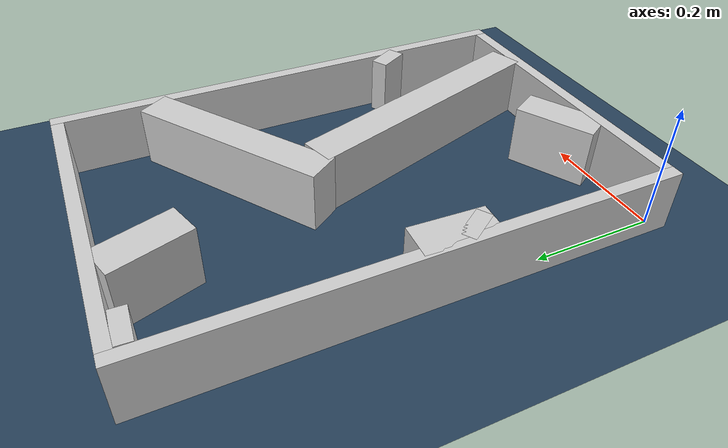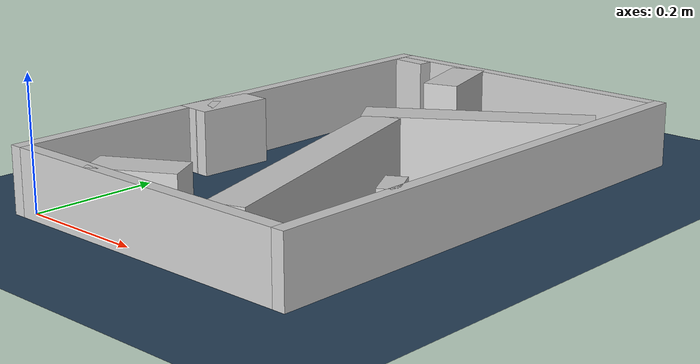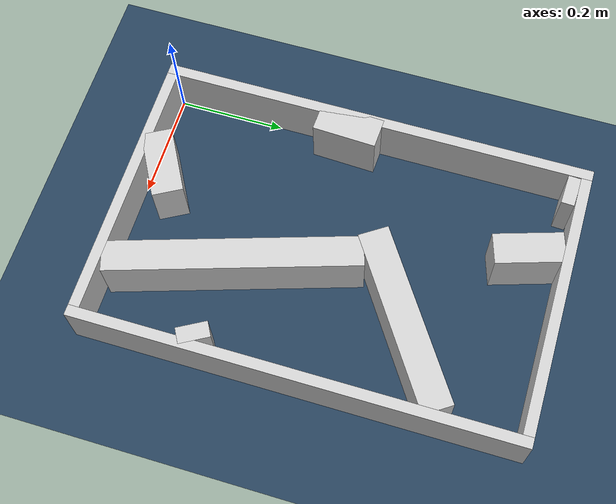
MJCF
<?xml version="1.0" ?>
<mujoco model="generated_real_template">
  <compiler angle="degree"/>
  <option timestep="0.002" integrator="implicitfast" iterations="100" cone="elliptic"/>
  <default>
    <geom density="1"/>
  </default>
  <asset>
    <texture builtin="gradient" height="3072" rgb1="0.3 0.5 0.7" rgb2="0 0 0" type="skybox" width="512"/>
    <texture builtin="checker" height="300" mark="edge" markrgb="0.8 0.8 0.8" name="groundplane" rgb1="0.2 0.3 0.4" rgb2="0.1 0.2 0.3" type="2d" width="300"/>
    <material name="groundplane" reflectance="0.2" texrepeat="5 5" texture="groundplane" texuniform="true"/>
  </asset>
  <worldbody>
    <light dir="0 0 -1" directional="true" pos="0 0 1.5"/>
    <geom name="floor" type="plane" condim="4" friction="0.5 0.005 0.001" material="groundplane" size="0 0 0.05"/>
    <body name="walls">
      <geom name="wall_boundary_left" type="box" condim="4" friction="1.0 0.005 0.0001" rgba="0.8 0.8 0.8 1" pos="-0.010000 0.387500 0.050000" euler="0 0 0.000000" size="0.010000 0.407500 0.050000"/>
      <geom name="wall_boundary_right" type="box" condim="4" friction="1.0 0.005 0.0001" rgba="0.8 0.8 0.8 1" pos="0.500000 0.387500 0.050000" euler="0 0 0.000000" size="0.010000 0.407500 0.050000"/>
      <geom name="wall_boundary_bottom" type="box" condim="4" friction="1.0 0.005 0.0001" rgba="0.8 0.8 0.8 1" pos="0.245000 -0.010000 0.050000" euler="0 0 0.000000" size="0.245000 0.010000 0.050000"/>
      <geom name="wall_boundary_top" type="box" condim="4" friction="1.0 0.005 0.0001" rgba="0.8 0.8 0.8 1" pos="0.245000 0.785000 0.050000" euler="0 0 0.000000" size="0.245000 0.010000 0.050000"/>
      <geom name="wall_inner_1_1" type="box" condim="4" friction="1.0 0.005 0.0001" rgba="0.8 0.8 0.8 1" pos="0.029664 0.762962 0.050000" euler="0 0 -92.513446" size="0.012049 0.028500 0.050000"/>
      <geom name="wall_inner_1_2" type="box" condim="4" friction="1.0 0.005 0.0001" rgba="0.8 0.8 0.8 1" pos="0.011106 0.340195 0.050000" euler="0 0 -92.513446" size="0.060034 0.028500 0.050000"/>
      <geom name="wall_inner_2_1" type="box" condim="4" friction="1.0 0.005 0.0001" rgba="0.8 0.8 0.8 1" pos="0.348638 0.538092 0.050000" euler="0 0 -146.000105" size="0.170513 0.028500 0.050000"/>
      <geom name="wall_inner_2_2" type="box" condim="4" friction="1.0 0.005 0.0001" rgba="0.8 0.8 0.8 1" pos="0.010226 0.309832 0.050000" euler="0 0 -146.000105" size="0.012335 0.028500 0.050000"/>
      <geom name="wall_inner_3_1" type="box" condim="4" friction="1.0 0.005 0.0001" rgba="0.8 0.8 0.8 1" pos="0.182850 0.036412 0.050000" euler="0 0 29.313742" size="0.064463 0.028500 0.050000"/>
      <geom name="wall_inner_3_2" type="box" condim="4" friction="1.0 0.005 0.0001" rgba="0.8 0.8 0.8 1" pos="0.477116 0.201639 0.050000" euler="0 0 29.313742" size="0.014776 0.028500 0.050000"/>
      <geom name="wall_inner_4_1" type="box" condim="4" friction="1.0 0.005 0.0001" rgba="0.8 0.8 0.8 1" pos="0.161132 0.714530 0.050000" euler="0 0 -72.304325" size="0.063473 0.028500 0.050000"/>
      <geom name="wall_inner_4_2" type="box" condim="4" friction="1.0 0.005 0.0001" rgba="0.8 0.8 0.8 1" pos="0.319184 0.219160 0.050000" euler="0 0 -72.304325" size="0.230045 0.028500 0.050000"/>
    </body>
  </worldbody>
</mujoco>
